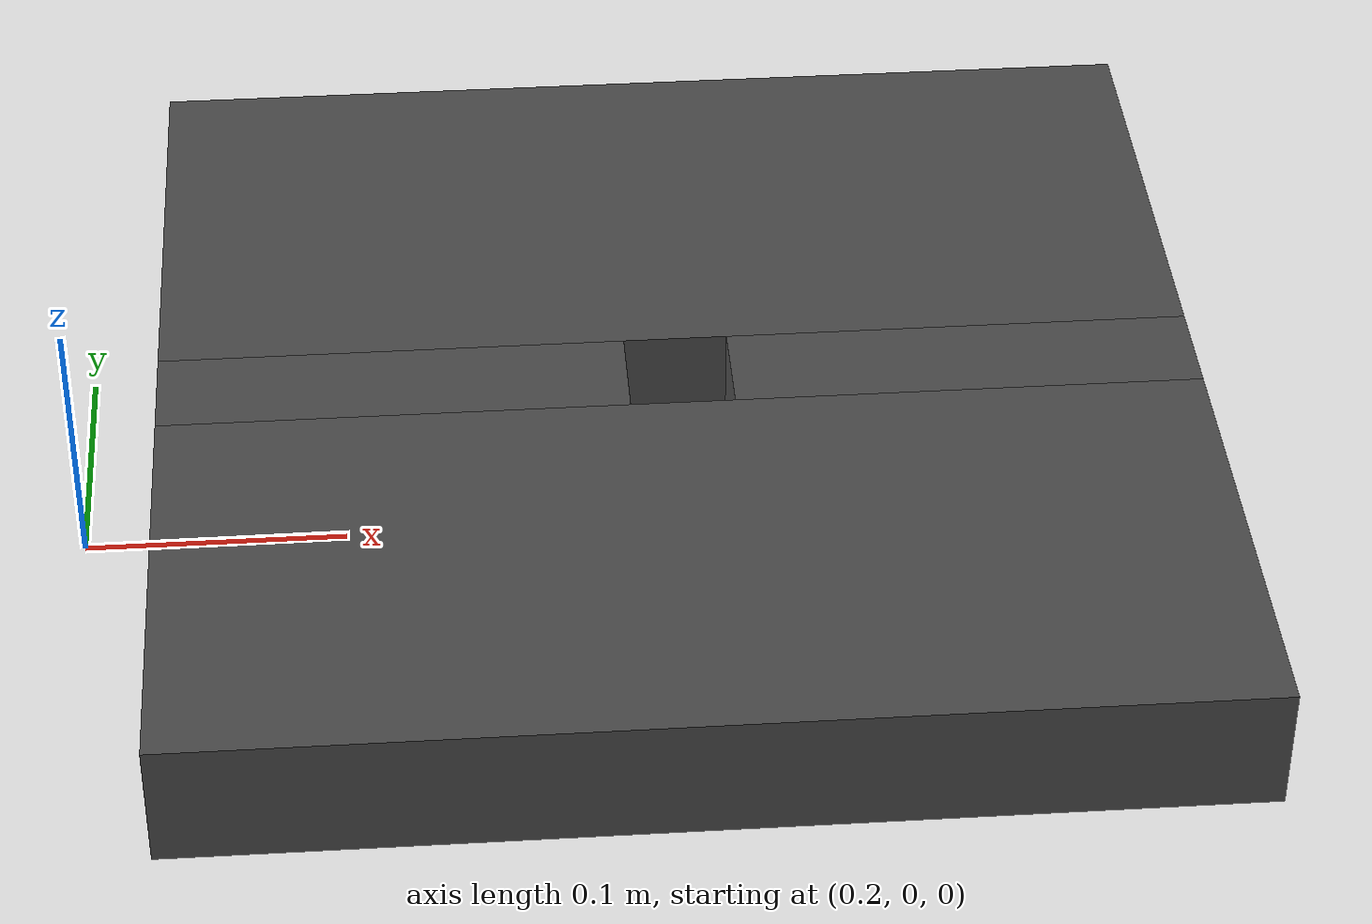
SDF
<?xml version="1.0" ?>
<sdf version="1.8">
  <world name="default">
    <plugin filename="ignition-gazebo-physics-system" name="ignition::gazebo::systems::Physics"></plugin>
    <plugin filename="ignition-gazebo-user-commands-system" name="ignition::gazebo::systems::UserCommands"></plugin>
    <plugin filename="ignition-gazebo-scene-broadcaster-system" name="ignition::gazebo::systems::SceneBroadcaster"></plugin>
    <plugin filename="ignition-gazebo-sensors-system" name="ignition::gazebo::systems::Sensors"></plugin>
    <plugin filename="ignition-gazebo-forcetorque-system" name="ignition::gazebo::systems::ForceTorque"></plugin>

    <light type="directional" name="sun">
      <cast_shadows>true</cast_shadows>
      <pose>0 0 10 0 0 0</pose>
      <diffuse>0.8 0.8 0.8 1</diffuse>
      <specular>0.2 0.2 0.2 1</specular>
      <direction>-0.5 0.1 -0.9</direction>
    </light>

    <model name="hole_board">
      <static>true</static>
      <pose>0.43 0.03 0.025 0 0 0</pose>

      <link name="board_link">

        <collision name="col_left">
          <pose>0 0.11 0 0 0 0</pose>
          <geometry><box><size>0.4 0.18 0.05</size></box></geometry>
          <surface>
            <contact>
              <ode>
                <kp>50000.0</kp>
                <kd>50.0</kd>
                <max_vel>0.01</max_vel>
                <min_depth>0.001</min_depth>
              </ode>
            </contact>
          </surface>
        </collision>
        <visual name="vis_left">
          <pose>0 0.11 0 0 0 0</pose>
          <geometry><box><size>0.4 0.18 0.05</size></box></geometry>
          <material><ambient>0.2 0.2 0.2 1</ambient><diffuse>0.3 0.3 0.3 1</diffuse></material>
        </visual>

        <collision name="col_right">
          <pose>0 -0.11 0 0 0 0</pose>
          <geometry><box><size>0.4 0.18 0.05</size></box></geometry>
          <surface>
            <contact>
              <ode>
                <kp>50000.0</kp>
                <kd>50.0</kd>
                <max_vel>0.01</max_vel>
                <min_depth>0.001</min_depth>
              </ode>
            </contact>
          </surface>
        </collision>
        <visual name="vis_right">
          <pose>0 -0.11 0 0 0 0</pose>
          <geometry><box><size>0.4 0.18 0.05</size></box></geometry>
          <material><ambient>0.2 0.2 0.2 1</ambient><diffuse>0.3 0.3 0.3 1</diffuse></material>
        </visual>

        <collision name="col_front">
          <pose>0.11 0 0 0 0 0</pose>
          <geometry><box><size>0.18 0.04 0.05</size></box></geometry>
          <surface>
            <contact>
              <ode>
                <kp>50000.0</kp>
                <kd>50.0</kd>
                <max_vel>0.01</max_vel>
                <min_depth>0.001</min_depth>
              </ode>
            </contact>
          </surface>
        </collision>
        <visual name="vis_front">
          <pose>0.11 0 0 0 0 0</pose>
          <geometry><box><size>0.18 0.04 0.05</size></box></geometry>
          <material><ambient>0.2 0.2 0.2 1</ambient><diffuse>0.3 0.3 0.3 1</diffuse></material>
        </visual>

        <collision name="col_back">
          <pose>-0.11 0 0 0 0 0</pose>
          <geometry><box><size>0.18 0.04 0.05</size></box></geometry>
          <surface>
            <contact>
              <ode>
                <kp>50000.0</kp>
                <kd>50.0</kd>
                <max_vel>0.01</max_vel>
                <min_depth>0.001</min_depth>
              </ode>
            </contact>
          </surface>
        </collision>
        <visual name="vis_back">
          <pose>-0.11 0 0 0 0 0</pose>
          <geometry><box><size>0.18 0.04 0.05</size></box></geometry>
          <material><ambient>0.2 0.2 0.2 1</ambient><diffuse>0.3 0.3 0.3 1</diffuse></material>
        </visual>
      </link>
    </model>
  </world>
</sdf>
